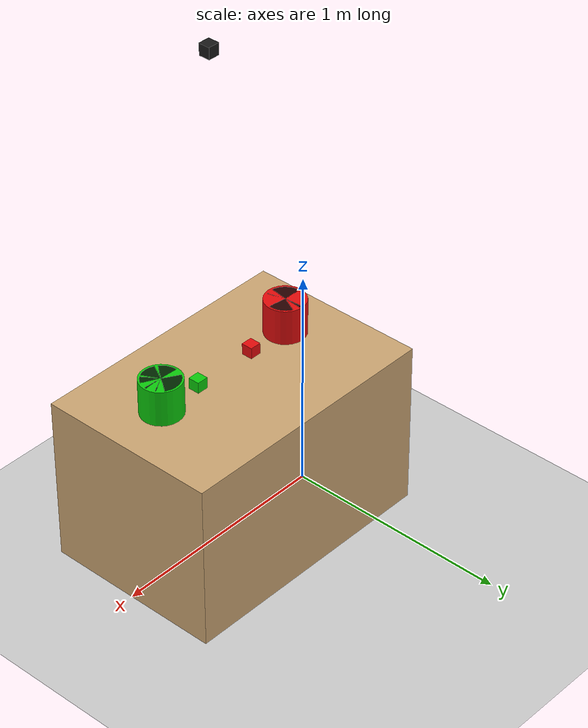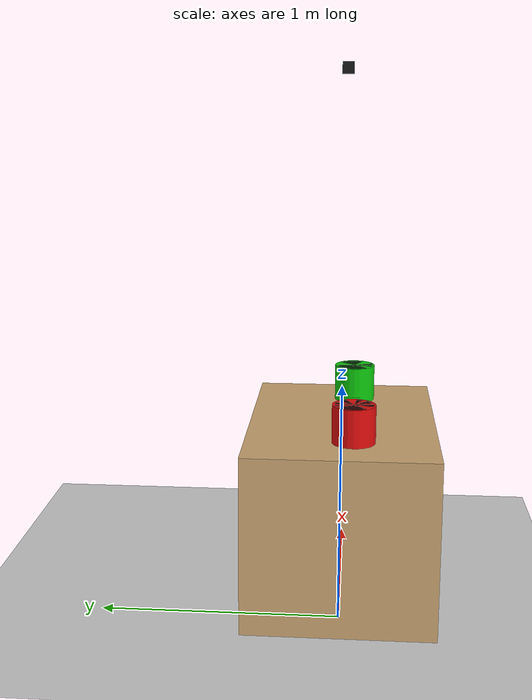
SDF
<sdf version="1.8">
 <world name="hw2_world">
  <plugin filename="gz-sim-physics-system" name="gz::sim::systems::Physics"/>
  <plugin filename="gz-sim-user-commands-system" name="gz::sim::systems::UserCommands"/>
  <plugin filename="gz-sim-scene-broadcaster-system" name="gz::sim::systems::SceneBroadcaster"/>
  <plugin filename="gz-sim-sensors-system" name="gz::sim::systems::Sensors">
   <render_engine>ogre2</render_engine>
  </plugin>
  <plugin filename="gz-sim-contact-system" name="gz::sim::systems::Contact"/>
  <light type="directional" name="sun">
   <pose>0 0 10 0 0 0</pose>
   <diffuse>0.8 0.8 0.8 1</diffuse>
   <specular>0.2 0.2 0.2 1</specular>
   <attenuation>
    <range>1000</range>
    <constant>0.9</constant>
    <linear>0.01</linear>
    <quadratic>0.001</quadratic>
   </attenuation>
   <direction>-0.5 0.1 -0.9</direction>
  </light>
  <model name="ground_plane">
   <static>true</static>
   <link name="link">
    <collision name="collision"><geometry><plane><normal>0 0 1</normal></plane></geometry></collision>
    <visual name="visual">
     <geometry><plane><normal>0 0 1</normal><size>100 100</size></plane></geometry>
     <material><ambient>0.8 0.8 0.8 1</ambient><diffuse>0.8 0.8 0.8 1</diffuse></material>
    </visual>
   </link>
  </model>
  <model name="table">
   <static>true</static>
   <pose>0.4 0 0 0 0 0</pose>
   <link name="table_link">
    <collision name="table_collision">
     <pose>0 0 0.375 0 0 0</pose>
     <geometry><box><size>1.2 0.8 0.75</size></box></geometry>
    </collision>
    <visual name="table_visual">
     <pose>0 0 0.375 0 0 0</pose>
     <geometry><box><size>1.2 0.8 0.75</size></box></geometry>
     <material>
      <ambient>0.8 0.65 0.45 1</ambient>
      <diffuse>0.8 0.65 0.45 1</diffuse>
      <specular>0.1 0.1 0.1 1</specular>
     </material>
    </visual>
   </link>
  </model>
  <model name="red_cube">
   <pose>0.25 -0.05 0.775 0 0 0</pose>
   <link name="link">
    <inertial>
     <mass>0.1</mass>
     <inertia><ixx>4.16e-6</ixx><iyy>4.16e-6</iyy><izz>4.16e-6</izz><ixy>0</ixy><ixz>0</ixz><iyz>0</iyz></inertia>
    </inertial>
    <collision name="collision">
     <geometry><box><size>0.05 0.05 0.05</size></box></geometry>
     <surface><friction><ode><mu>0.8</mu><mu2>0.8</mu2></ode></friction></surface>
    </collision>
    <visual name="visual">
     <geometry><box><size>0.05 0.05 0.05</size></box></geometry>
     <material>
      <ambient>0.9 0.05 0.05 1</ambient>
      <diffuse>0.9 0.05 0.05 1</diffuse>
      <specular>0.3 0.3 0.3 1</specular>
     </material>
    </visual>
   </link>
  </model>
  <model name="green_cube">
   <pose>0.55 -0.05 0.775 0 0 0</pose>
   <link name="link">
    <inertial>
     <mass>0.1</mass>
     <inertia><ixx>4.16e-6</ixx><iyy>4.16e-6</iyy><izz>4.16e-6</izz><ixy>0</ixy><ixz>0</ixz><iyz>0</iyz></inertia>
    </inertial>
    <collision name="collision">
     <geometry><box><size>0.05 0.05 0.05</size></box></geometry>
     <surface><friction><ode><mu>0.8</mu><mu2>0.8</mu2></ode></friction></surface>
    </collision>
    <visual name="visual">
     <geometry><box><size>0.05 0.05 0.05</size></box></geometry>
     <material>
      <ambient>0.05 0.8 0.05 1</ambient>
      <diffuse>0.05 0.8 0.05 1</diffuse>
      <specular>0.3 0.3 0.3 1</specular>
     </material>
    </visual>
   </link>
  </model>
  <model name="red_bucket">
   <static>true</static>
   <pose>0.05 -0.05 0.75 0 0 0</pose>
   <link name="link">
    <visual name="outer_visual">
     <pose>0 0 0.08 0 0 0</pose>
     <geometry><cylinder><radius>0.09</radius><length>0.16</length></cylinder></geometry>
     <material>
      <ambient>0.9 0.05 0.05 1</ambient>
      <diffuse>0.9 0.05 0.05 1</diffuse>
      <specular>0.3 0.3 0.3 1</specular>
     </material>
    </visual>
    <visual name="inner_top_visual">
     <pose>0 0 0.158 0 0 0</pose>
     <geometry><cylinder><radius>0.082</radius><length>0.004</length></cylinder></geometry>
     <material><ambient>0.15 0.0 0.0 1</ambient><diffuse>0.15 0.0 0.0 1</diffuse></material>
    </visual>
    <collision name="wall_n">
     <pose>0 0.082 0.08 0 0 0</pose>
     <geometry><box><size>0.164 0.008 0.16</size></box></geometry>
    </collision>
    <collision name="wall_s">
     <pose>0 -0.082 0.08 0 0 0</pose>
     <geometry><box><size>0.164 0.008 0.16</size></box></geometry>
    </collision>
    <collision name="wall_e">
     <pose>0.082 0 0.08 0 0 0</pose>
     <geometry><box><size>0.008 0.164 0.16</size></box></geometry>
    </collision>
    <collision name="wall_w">
     <pose>-0.082 0 0.08 0 0 0</pose>
     <geometry><box><size>0.008 0.164 0.16</size></box></geometry>
    </collision>
    <collision name="bottom">
     <pose>0 0 0.005 0 0 0</pose>
     <geometry><box><size>0.18 0.18 0.01</size></box></geometry>
    </collision>
   </link>
  </model>
  <model name="green_bucket">
   <static>true</static>
   <pose>0.75 -0.05 0.75 0 0 0</pose>
   <link name="link">
    <visual name="outer_visual">
     <pose>0 0 0.08 0 0 0</pose>
     <geometry><cylinder><radius>0.09</radius><length>0.16</length></cylinder></geometry>
     <material>
      <ambient>0.05 0.8 0.05 1</ambient>
      <diffuse>0.05 0.8 0.05 1</diffuse>
      <specular>0.3 0.3 0.3 1</specular>
     </material>
    </visual>
    <visual name="inner_top_visual">
     <pose>0 0 0.158 0 0 0</pose>
     <geometry><cylinder><radius>0.082</radius><length>0.004</length></cylinder></geometry>
     <material><ambient>0.0 0.15 0.0 1</ambient><diffuse>0.0 0.15 0.0 1</diffuse></material>
    </visual>
    <collision name="wall_n">
     <pose>0 0.082 0.08 0 0 0</pose>
     <geometry><box><size>0.164 0.008 0.16</size></box></geometry>
    </collision>
    <collision name="wall_s">
     <pose>0 -0.082 0.08 0 0 0</pose>
     <geometry><box><size>0.164 0.008 0.16</size></box></geometry>
    </collision>
    <collision name="wall_e">
     <pose>0.082 0 0.08 0 0 0</pose>
     <geometry><box><size>0.008 0.164 0.16</size></box></geometry>
    </collision>
    <collision name="wall_w">
     <pose>-0.082 0 0.08 0 0 0</pose>
     <geometry><box><size>0.008 0.164 0.16</size></box></geometry>
    </collision>
    <collision name="bottom">
     <pose>0 0 0.005 0 0 0</pose>
     <geometry><box><size>0.18 0.18 0.01</size></box></geometry>
    </collision>
   </link>
  </model>
  <model name="overhead_camera">
   <static>true</static>
   <pose>0.5 0 2.25 0 1.5708 0</pose>
   <link name="camera_link">
    <visual name="visual">
     <geometry><box><size>0.05 0.05 0.05</size></box></geometry>
     <material><ambient>0.1 0.1 0.1 1</ambient></material>
    </visual>
    <sensor name="rgb_camera" type="camera">
     <always_on>true</always_on>
     <update_rate>30</update_rate>
     <topic>/camera/image_raw</topic>
     <camera name="rgb_camera">
      <horizontal_fov>1.2</horizontal_fov>
      <image><width>640</width><height>480</height><format>R8G8B8</format></image>
      <clip><near>0.1</near><far>10.0</far></clip>
     </camera>
    </sensor>
   </link>
  </model>
 </world>
</sdf>
